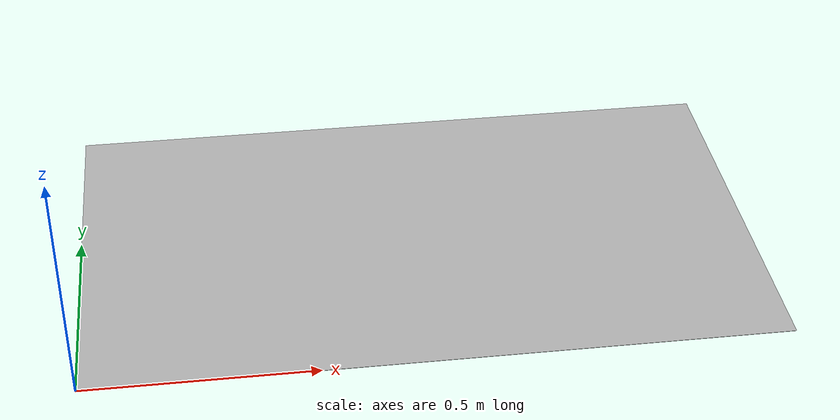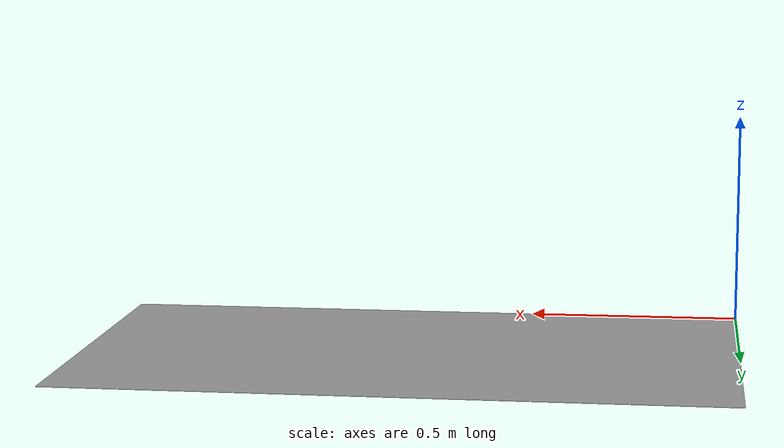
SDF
<?xml version="1.0"?>
<sdf version="1.4">
<model name="gridworld_project">
  <static>true</static>
    <link name="link">
      <pose>0.75 0.457 0 0 0 0</pose>
      <collision name="collision">
        <geometry>
          <plane>
            <normal>0 0 1</normal>
            <size>1.5 0.914</size>
          </plane>
        </geometry>
        <surface>
          <friction>
            <ode>
              <mu>100</mu>
              <mu2>50</mu2>
            </ode>
          </friction>
        </surface>
      </collision>
      <visual name="visual">
        <cast_shadows>false</cast_shadows>
        <geometry>
          <plane>
            <normal>0 0 1</normal>
            <size>1.5 0.914</size>
          </plane>
        </geometry>
        <material>
          <script>
            <uri>model://gridworld_project/gridworld/materials/gridworld.material</uri>
            <name>GridworldProject/Image</name>
          </script>
        </material>
      </visual>
    </link>
  </model>
</sdf>
